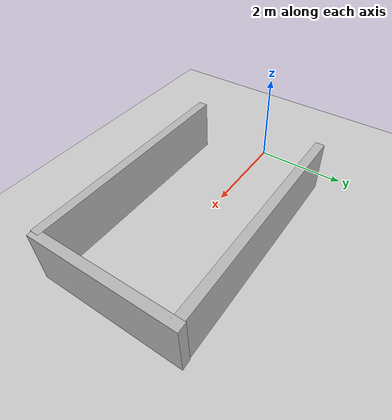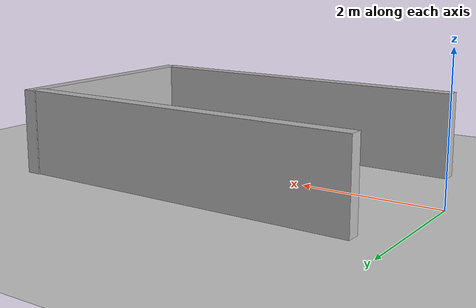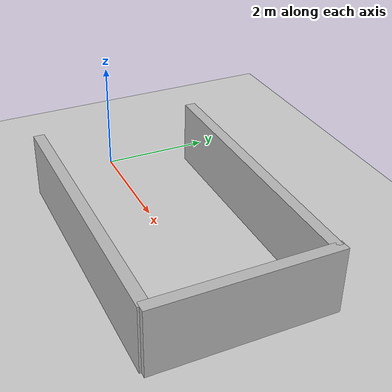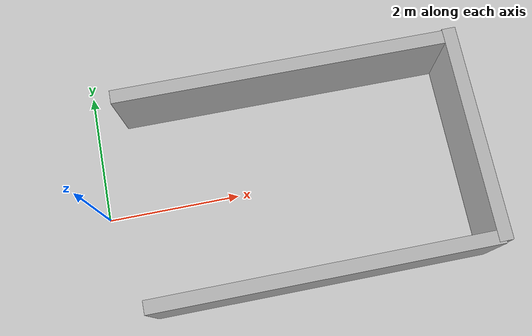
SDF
<?xml version="1.0"?>
<sdf version="1.6">
  <world name="v2-04g-r5-maneuver-s5133">
    <gravity>0 0 -9.81</gravity>
    <physics name="v2_deterministic" type="ode">
      <max_step_size>0.002</max_step_size>
      <real_time_update_rate>500</real_time_update_rate>
    </physics>
    <include>
      <uri>model://sun</uri>
    </include>
    <include>
      <uri>model://ground_plane</uri>
    </include>
    <model name="bay-left">
      <static>true</static>
      <pose>2.976906281 1.509519125 0.600000000 0 0 -0.003592765</pose>
      <link name="link">
        <collision name="collision">
          <geometry>
            <box>
              <size>5.000000 0.200000 1.200000</size>
            </box>
          </geometry>
        </collision>
        <visual name="visual">
          <geometry>
            <box>
              <size>5.000000 0.200000 1.200000</size>
            </box>
          </geometry>
        </visual>
      </link>
    </model>
    <model name="bay-right">
      <static>true</static>
      <pose>3.009445482 -1.514900991 0.600000000 0 0 -0.000006013</pose>
      <link name="link">
        <collision name="collision">
          <geometry>
            <box>
              <size>5.000000 0.200000 1.200000</size>
            </box>
          </geometry>
        </collision>
        <visual name="visual">
          <geometry>
            <box>
              <size>5.000000 0.200000 1.200000</size>
            </box>
          </geometry>
        </visual>
      </link>
    </model>
    <model name="bay-back">
      <static>true</static>
      <pose>5.503970159 0.018411390 0.600000000 0 0 0.004283428</pose>
      <link name="link">
        <collision name="collision">
          <geometry>
            <box>
              <size>0.200000 3.200000 1.200000</size>
            </box>
          </geometry>
        </collision>
        <visual name="visual">
          <geometry>
            <box>
              <size>0.200000 3.200000 1.200000</size>
            </box>
          </geometry>
        </visual>
      </link>
    </model>
  </world>
</sdf>
